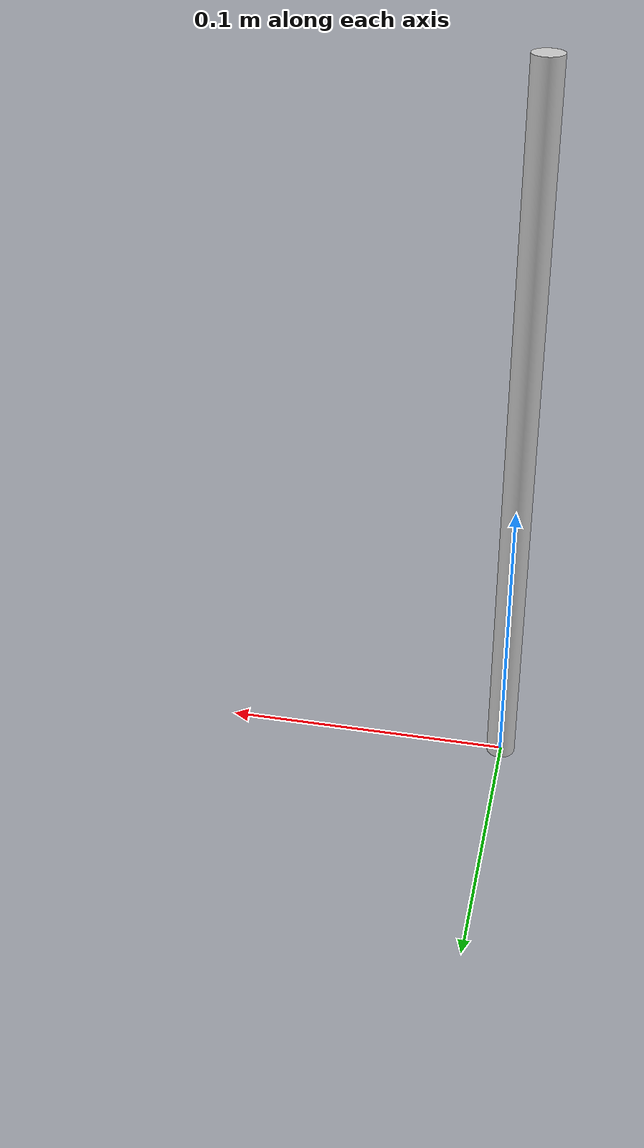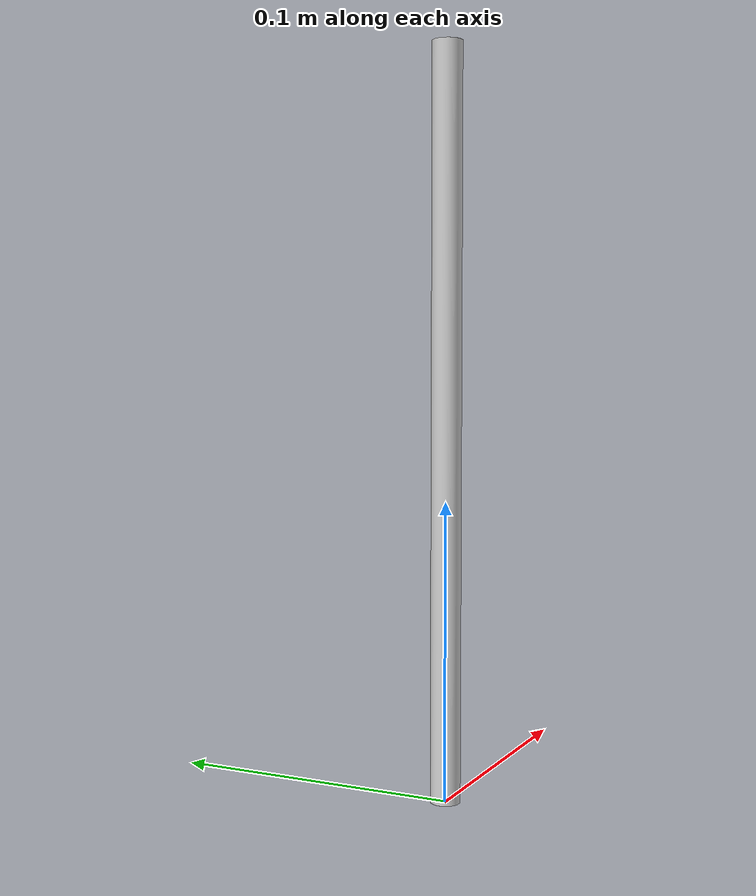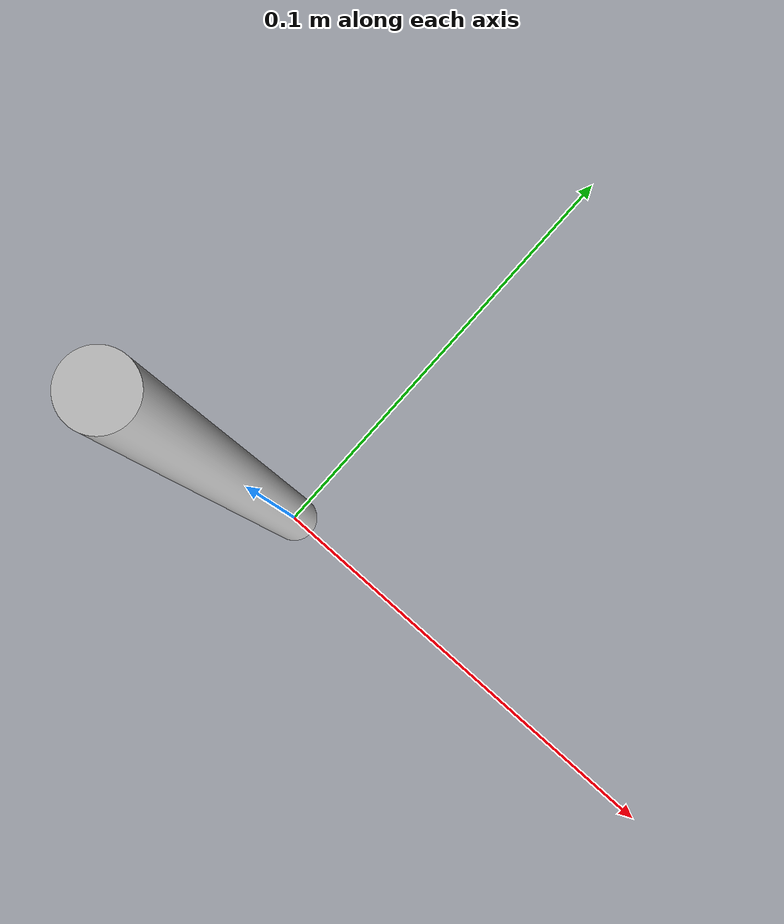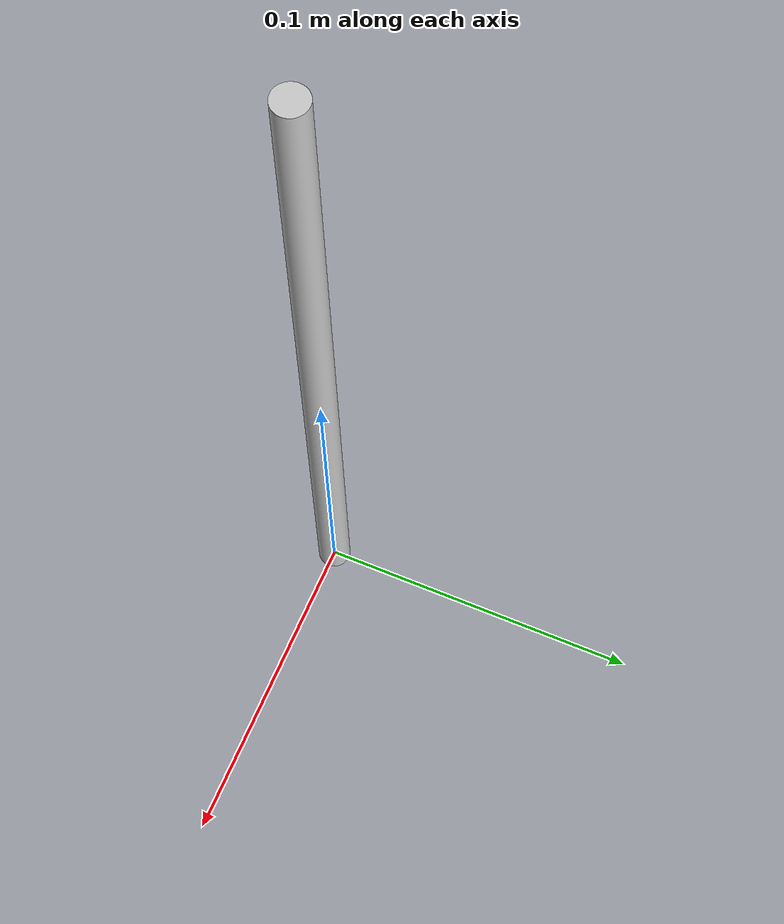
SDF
<?xml version="1.0" ?>
<sdf version="1.6">
  <model name="tube">
    <static>false</static>
    <link name="link">
      <inertial>
        <mass>10.0</mass>  <!-- 设置质量为10kg -->
        <inertia>
          <ixx>0.05209</ixx>  <!-- 惯性张量 I_xx -->
          <iyy>0.05209</iyy>  <!-- 惯性张量 I_yy -->
          <izz>0.000125</izz>  <!-- 惯性张量 I_zz -->
          <ixy>0</ixy>
          <ixz>0</ixz>
          <iyz>0</iyz>
        </inertia>
      </inertial>
      <visual name="visual">
        <geometry>
          <mesh>
            <uri>model://tube/meshes/tube.dae</uri>
          </mesh>
        </geometry>
      </visual>
      <collision name="collision">
        <geometry>
          <mesh>
            <uri>model://tube/meshes/tube.dae</uri>
          </mesh>
        </geometry>
      </collision>
    </link>
  </model>
</sdf>
